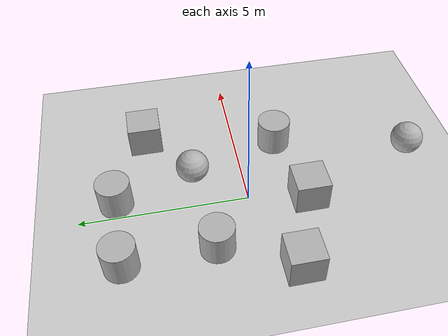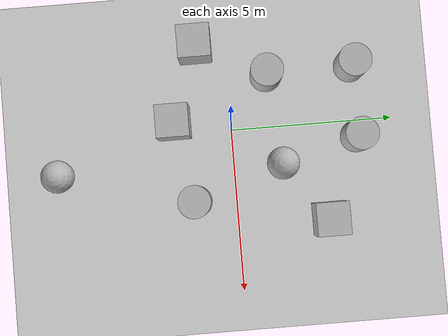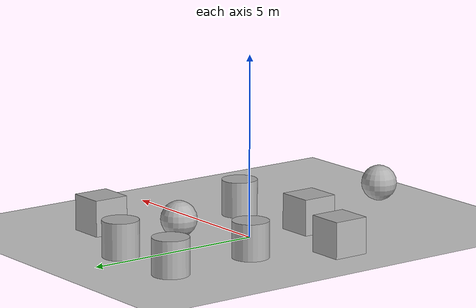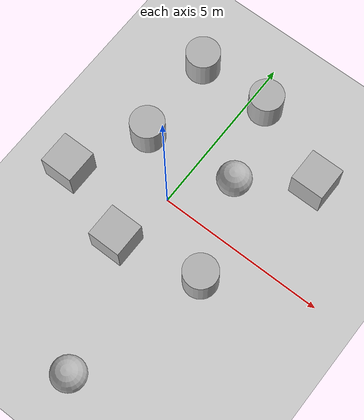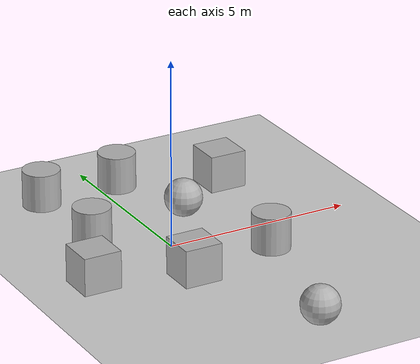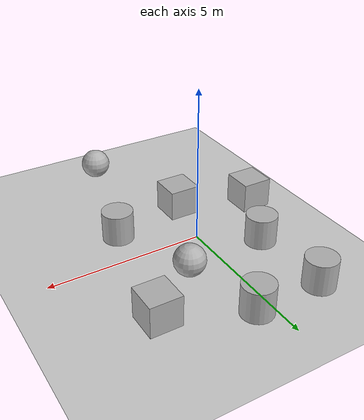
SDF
<sdf version='1.9'>
  <world name='car_world'>
    <physics name='1ms' type='ignored'>
      <max_step_size>0.001</max_step_size>
      <real_time_factor>1</real_time_factor>
      <real_time_update_rate>1000</real_time_update_rate>
    </physics>
    <plugin name='ignition::gazebo::systems::Physics' filename='libignition-gazebo-physics-system.so'/>
    <plugin name='ignition::gazebo::systems::UserCommands' filename='libignition-gazebo-user-commands-system.so'/>
    <plugin name='ignition::gazebo::systems::SceneBroadcaster' filename='libignition-gazebo-scene-broadcaster-system.so'/>
    <gravity>0 0 -9.8</gravity>
    <magnetic_field>6e-06 2.3e-05 -4.2e-05</magnetic_field>
    <atmosphere type='adiabatic'/>
    <scene>
      <ambient>0.4 0.4 0.4 1</ambient>
      <background>0.7 0.7 0.7 1</background>
      <shadows>true</shadows>
    </scene>
    <model name='ground_plane'>
      <static>true</static>
      <link name='link'>
        <collision name='collision'>
          <geometry>
            <plane>
              <normal>0 0 1</normal>
              <size>1 1</size>
            </plane>
          </geometry>
          <surface>
            <friction>
              <ode/>
            </friction>
            <bounce/>
            <contact/>
          </surface>
        </collision>
        <visual name='visual'>
          <geometry>
            <plane>
              <normal>0 0 1</normal>
              <size>100 100</size>
            </plane>
          </geometry>
          <material>
            <ambient>0.8 0.8 0.8 1</ambient>
            <diffuse>0.8 0.8 0.8 1</diffuse>
            <specular>0.8 0.8 0.8 1</specular>
          </material>
        </visual>
        <pose>0 0 0 0 -0 0</pose>
        <inertial>
          <pose>0 0 0 0 -0 0</pose>
          <mass>1</mass>
          <inertia>
            <ixx>1</ixx>
            <ixy>0</ixy>
            <ixz>0</ixz>
            <iyy>1</iyy>
            <iyz>0</iyz>
            <izz>1</izz>
          </inertia>
        </inertial>
        <enable_wind>false</enable_wind>
      </link>
      <pose>0 0 0 0 -0 0</pose>
      <self_collide>false</self_collide>
    </model>
    <model name='box'>
      <pose>2.96606 2.79225 0.5 0 -0 0</pose>
      <link name='box_link'>
        <inertial>
          <inertia>
            <ixx>0.16666</ixx>
            <ixy>0</ixy>
            <ixz>0</ixz>
            <iyy>0.16666</iyy>
            <iyz>0</iyz>
            <izz>0.16666</izz>
          </inertia>
          <mass>1</mass>
          <pose>0 0 0 0 -0 0</pose>
        </inertial>
        <collision name='box_collision'>
          <geometry>
            <box>
              <size>1 1 1</size>
            </box>
          </geometry>
          <surface>
            <friction>
              <ode/>
            </friction>
            <bounce/>
            <contact/>
          </surface>
        </collision>
        <visual name='box_visual'>
          <geometry>
            <box>
              <size>1 1 1</size>
            </box>
          </geometry>
          <material>
            <ambient>0.3 0.3 0.3 1</ambient>
            <diffuse>0.7 0.7 0.7 1</diffuse>
            <specular>1 1 1 1</specular>
          </material>
        </visual>
        <pose>0 0 0 0 -0 0</pose>
        <enable_wind>false</enable_wind>
      </link>
      <static>false</static>
      <self_collide>false</self_collide>
    </model>
    <model name='sphere'>
      <pose>1.04749 -5.3843 0.5 0 -0 0</pose>
      <link name='sphere_link'>
        <inertial>
          <inertia>
            <ixx>0.10000000000000001</ixx>
            <ixy>0</ixy>
            <ixz>0</ixz>
            <iyy>0.10000000000000001</iyy>
            <iyz>0</iyz>
            <izz>0.10000000000000001</izz>
          </inertia>
          <mass>1</mass>
          <pose>0 0 0 0 -0 0</pose>
        </inertial>
        <collision name='sphere_collision'>
          <geometry>
            <sphere>
              <radius>0.5</radius>
            </sphere>
          </geometry>
          <surface>
            <friction>
              <ode/>
            </friction>
            <bounce/>
            <contact/>
          </surface>
        </collision>
        <visual name='sphere_visual'>
          <geometry>
            <sphere>
              <radius>0.5</radius>
            </sphere>
          </geometry>
          <material>
            <ambient>0.3 0.3 0.3 1</ambient>
            <diffuse>0.7 0.7 0.7 1</diffuse>
            <specular>1 1 1 1</specular>
          </material>
        </visual>
        <pose>0 0 0 0 -0 0</pose>
        <enable_wind>false</enable_wind>
      </link>
      <static>false</static>
      <self_collide>false</self_collide>
    </model>
    <model name='cylinder'>
      <pose>-1.70824 3.83525 0.499999 0 -0 0</pose>
      <link name='cylinder_link'>
        <inertial>
          <inertia>
            <ixx>0.14580000000000001</ixx>
            <ixy>0</ixy>
            <ixz>0</ixz>
            <iyy>0.14580000000000001</iyy>
            <iyz>0</iyz>
            <izz>0.125</izz>
          </inertia>
          <mass>1</mass>
          <pose>0 0 0 0 -0 0</pose>
        </inertial>
        <collision name='cylinder_collision'>
          <geometry>
            <cylinder>
              <radius>0.5</radius>
              <length>1</length>
            </cylinder>
          </geometry>
          <surface>
            <friction>
              <ode/>
            </friction>
            <bounce/>
            <contact/>
          </surface>
        </collision>
        <visual name='cylinder_visual'>
          <geometry>
            <cylinder>
              <radius>0.5</radius>
              <length>1</length>
            </cylinder>
          </geometry>
          <material>
            <ambient>0.3 0.3 0.3 1</ambient>
            <diffuse>0.7 0.7 0.7 1</diffuse>
            <specular>1 1 1 1</specular>
          </material>
        </visual>
        <pose>0 0 0 0 -0 0</pose>
        <enable_wind>false</enable_wind>
      </link>
      <static>false</static>
      <self_collide>false</self_collide>
    </model>
    <model name='cylinder_0'>
      <pose>0.500527 3.86236 0.5 0 -0 0</pose>
      <link name='cylinder_link'>
        <inertial>
          <inertia>
            <ixx>0.14580000000000001</ixx>
            <ixy>0</ixy>
            <ixz>0</ixz>
            <iyy>0.14580000000000001</iyy>
            <iyz>0</iyz>
            <izz>0.125</izz>
          </inertia>
          <mass>1</mass>
          <pose>0 0 0 0 -0 0</pose>
        </inertial>
        <collision name='cylinder_collision'>
          <geometry>
            <cylinder>
              <radius>0.5</radius>
              <length>1</length>
            </cylinder>
          </geometry>
          <surface>
            <friction>
              <ode/>
            </friction>
            <bounce/>
            <contact/>
          </surface>
        </collision>
        <visual name='cylinder_visual'>
          <geometry>
            <cylinder>
              <radius>0.5</radius>
              <length>1</length>
            </cylinder>
          </geometry>
          <material>
            <ambient>0.3 0.3 0.3 1</ambient>
            <diffuse>0.7 0.7 0.7 1</diffuse>
            <specular>1 1 1 1</specular>
          </material>
        </visual>
        <pose>0 0 0 0 -0 0</pose>
        <enable_wind>false</enable_wind>
      </link>
      <static>false</static>
      <self_collide>false</self_collide>
    </model>
    <model name='cylinder_1'>
      <pose>-1.61548 1.19279 0.5 0 -0 0</pose>
      <link name='cylinder_link'>
        <inertial>
          <inertia>
            <ixx>0.14580000000000001</ixx>
            <ixy>0</ixy>
            <ixz>0</ixz>
            <iyy>0.14580000000000001</iyy>
            <iyz>0</iyz>
            <izz>0.125</izz>
          </inertia>
          <mass>1</mass>
          <pose>0 0 0 0 -0 0</pose>
        </inertial>
        <collision name='cylinder_collision'>
          <geometry>
            <cylinder>
              <radius>0.5</radius>
              <length>1</length>
            </cylinder>
          </geometry>
          <surface>
            <friction>
              <ode/>
            </friction>
            <bounce/>
            <contact/>
          </surface>
        </collision>
        <visual name='cylinder_visual'>
          <geometry>
            <cylinder>
              <radius>0.5</radius>
              <length>1</length>
            </cylinder>
          </geometry>
          <material>
            <ambient>0.3 0.3 0.3 1</ambient>
            <diffuse>0.7 0.7 0.7 1</diffuse>
            <specular>1 1 1 1</specular>
          </material>
        </visual>
        <pose>0 0 0 0 -0 0</pose>
        <enable_wind>false</enable_wind>
      </link>
      <static>false</static>
      <self_collide>false</self_collide>
    </model>
    <model name='cylinder_2'>
      <pose>2.13765 -1.27306 0.5 0 -0 0</pose>
      <link name='cylinder_link'>
        <inertial>
          <inertia>
            <ixx>0.14580000000000001</ixx>
            <ixy>0</ixy>
            <ixz>0</ixz>
            <iyy>0.14580000000000001</iyy>
            <iyz>0</iyz>
            <izz>0.125</izz>
          </inertia>
          <mass>1</mass>
          <pose>0 0 0 0 -0 0</pose>
        </inertial>
        <collision name='cylinder_collision'>
          <geometry>
            <cylinder>
              <radius>0.5</radius>
              <length>1</length>
            </cylinder>
          </geometry>
          <surface>
            <friction>
              <ode/>
            </friction>
            <bounce/>
            <contact/>
          </surface>
        </collision>
        <visual name='cylinder_visual'>
          <geometry>
            <cylinder>
              <radius>0.5</radius>
              <length>1</length>
            </cylinder>
          </geometry>
          <material>
            <ambient>0.3 0.3 0.3 1</ambient>
            <diffuse>0.7 0.7 0.7 1</diffuse>
            <specular>1 1 1 1</specular>
          </material>
        </visual>
        <pose>0 0 0 0 -0 0</pose>
        <enable_wind>false</enable_wind>
      </link>
      <static>false</static>
      <self_collide>false</self_collide>
    </model>
    <model name='box_0'>
      <pose>-0.337142 -1.75975 0.5 0 -0 0</pose>
      <link name='box_link'>
        <inertial>
          <inertia>
            <ixx>0.16666</ixx>
            <ixy>0</ixy>
            <ixz>0</ixz>
            <iyy>0.16666</iyy>
            <iyz>0</iyz>
            <izz>0.16666</izz>
          </inertia>
          <mass>1</mass>
          <pose>0 0 0 0 -0 0</pose>
        </inertial>
        <collision name='box_collision'>
          <geometry>
            <box>
              <size>1 1 1</size>
            </box>
          </geometry>
          <surface>
            <friction>
              <ode/>
            </friction>
            <bounce/>
            <contact/>
          </surface>
        </collision>
        <visual name='box_visual'>
          <geometry>
            <box>
              <size>1 1 1</size>
            </box>
          </geometry>
          <material>
            <ambient>0.3 0.3 0.3 1</ambient>
            <diffuse>0.7 0.7 0.7 1</diffuse>
            <specular>1 1 1 1</specular>
          </material>
        </visual>
        <pose>0 0 0 0 -0 0</pose>
        <enable_wind>false</enable_wind>
      </link>
      <static>false</static>
      <self_collide>false</self_collide>
    </model>
    <model name='box_1'>
      <pose>-2.67467 -0.935548 0.5 0 -0 0</pose>
      <link name='box_link'>
        <inertial>
          <inertia>
            <ixx>0.16666</ixx>
            <ixy>0</ixy>
            <ixz>0</ixz>
            <iyy>0.16666</iyy>
            <iyz>0</iyz>
            <izz>0.16666</izz>
          </inertia>
          <mass>1</mass>
          <pose>0 0 0 0 -0 0</pose>
        </inertial>
        <collision name='box_collision'>
          <geometry>
            <box>
              <size>1 1 1</size>
            </box>
          </geometry>
          <surface>
            <friction>
              <ode/>
            </friction>
            <bounce/>
            <contact/>
          </surface>
        </collision>
        <visual name='box_visual'>
          <geometry>
            <box>
              <size>1 1 1</size>
            </box>
          </geometry>
          <material>
            <ambient>0.3 0.3 0.3 1</ambient>
            <diffuse>0.7 0.7 0.7 1</diffuse>
            <specular>1 1 1 1</specular>
          </material>
        </visual>
        <pose>0 0 0 0 -0 0</pose>
        <enable_wind>false</enable_wind>
      </link>
      <static>false</static>
      <self_collide>false</self_collide>
    </model>
    <model name='sphere_0'>
      <pose>1.17637 1.49069 0.5 0 -0 0</pose>
      <link name='sphere_link'>
        <inertial>
          <inertia>
            <ixx>0.10000000000000001</ixx>
            <ixy>0</ixy>
            <ixz>0</ixz>
            <iyy>0.10000000000000001</iyy>
            <iyz>0</iyz>
            <izz>0.10000000000000001</izz>
          </inertia>
          <mass>1</mass>
          <pose>0 0 0 0 -0 0</pose>
        </inertial>
        <collision name='sphere_collision'>
          <geometry>
            <sphere>
              <radius>0.5</radius>
            </sphere>
          </geometry>
          <surface>
            <friction>
              <ode/>
            </friction>
            <bounce/>
            <contact/>
          </surface>
        </collision>
        <visual name='sphere_visual'>
          <geometry>
            <sphere>
              <radius>0.5</radius>
            </sphere>
          </geometry>
          <material>
            <ambient>0.3 0.3 0.3 1</ambient>
            <diffuse>0.7 0.7 0.7 1</diffuse>
            <specular>1 1 1 1</specular>
          </material>
        </visual>
        <pose>0 0 0 0 -0 0</pose>
        <enable_wind>false</enable_wind>
      </link>
      <static>false</static>
      <self_collide>false</self_collide>
    </model>
    <light name='sun' type='directional'>
      <pose>0 0 10 0 -0 0</pose>
      <cast_shadows>true</cast_shadows>
      <intensity>1</intensity>
      <direction>-0.5 0.1 -0.9</direction>
      <diffuse>0.8 0.8 0.8 1</diffuse>
      <specular>0.2 0.2 0.2 1</specular>
      <attenuation>
        <range>1000</range>
        <linear>0.01</linear>
        <constant>0.90000000000000002</constant>
        <quadratic>0.001</quadratic>
      </attenuation>
      <spot>
        <inner_angle>0</inner_angle>
        <outer_angle>0</outer_angle>
        <falloff>0</falloff>
      </spot>
    </light>
  </world>
</sdf>
